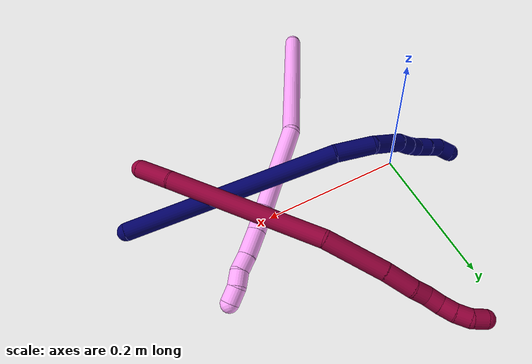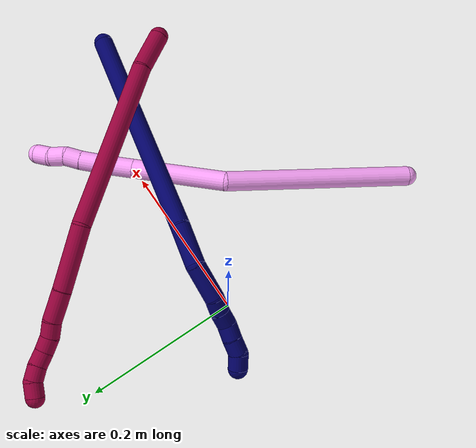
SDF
<sdf version="1.7">
 <world name="default">
  <model name="4">
   <static>0</static>
   <link name="4">
    <collision name="collision-cylinder-e_1_1_4">
     <pose>0.055695 0.020241 0.105749 -0.189122 0.477377 -0.046148</pose>
     <geometry><cylinder><radius>0.0125</radius><length>0.242441</length></cylinder></geometry>
     <surface>
      <friction><ode><mu>1.16</mu><mu2>1.16</mu2><slip1>0</slip1><slip2>0</slip2></ode></friction>
      <contact><ode><kp>1e+06</kp><kd>1</kd><max_vel>0</max_vel><min_depth>0.001</min_depth></ode></contact>
     </surface>
    </collision>
    <visual name="visual-cylinder-e_1_1_4">
     <pose>0.055695 0.020241 0.105749 -0.189122 0.477377 -0.046148</pose>
     <geometry><cylinder><radius>0.0125</radius><length>0.242441</length></cylinder></geometry>
     <material><ambient>1 0.65098 0.996078 1</ambient></material>
    </visual>
    <collision name="collision-cylinder-e_2_4_5">
     <pose>0.118951 0.071445 0.26362 -0.536023 0.124076 -0.034114</pose>
     <geometry><cylinder><radius>0.0125</radius><length>0.122191</length></cylinder></geometry>
     <surface>
      <friction><ode><mu>1.16</mu><mu2>1.16</mu2><slip1>0</slip1><slip2>0</slip2></ode></friction>
      <contact><ode><kp>1e+06</kp><kd>1</kd><max_vel>0</max_vel><min_depth>0.001</min_depth></ode></contact>
     </surface>
    </collision>
    <visual name="visual-cylinder-e_2_4_5">
     <pose>0.118951 0.071445 0.26362 -0.536023 0.124076 -0.034114</pose>
     <geometry><cylinder><radius>0.0125</radius><length>0.122191</length></cylinder></geometry>
     <material><ambient>1 0.65098 0.996078 1</ambient></material>
    </visual>
    <collision name="collision-cylinder-e_3_5_6">
     <pose>0.128809 0.111263 0.3307 -0.534522 0.131413 -0.03603</pose>
     <geometry><cylinder><radius>0.0125</radius><length>0.035066</length></cylinder></geometry>
     <surface>
      <friction><ode><mu>1.16</mu><mu2>1.16</mu2><slip1>0</slip1><slip2>0</slip2></ode></friction>
      <contact><ode><kp>1e+06</kp><kd>1</kd><max_vel>0</max_vel><min_depth>0.001</min_depth></ode></contact>
     </surface>
    </collision>
    <visual name="visual-cylinder-e_3_5_6">
     <pose>0.128809 0.111263 0.3307 -0.534522 0.131413 -0.03603</pose>
     <geometry><cylinder><radius>0.0125</radius><length>0.035066</length></cylinder></geometry>
     <material><ambient>1 0.65098 0.996078 1</ambient></material>
    </visual>
    <collision name="collision-cylinder-e_4_6_7">
     <pose>0.134117 0.129673 0.360891 -0.560229 0.165845 -0.04781</pose>
     <geometry><cylinder><radius>0.0125</radius><length>0.036465</length></cylinder></geometry>
     <surface>
      <friction><ode><mu>1.16</mu><mu2>1.16</mu2><slip1>0</slip1><slip2>0</slip2></ode></friction>
      <contact><ode><kp>1e+06</kp><kd>1</kd><max_vel>0</max_vel><min_depth>0.001</min_depth></ode></contact>
     </surface>
    </collision>
    <visual name="visual-cylinder-e_4_6_7">
     <pose>0.134117 0.129673 0.360891 -0.560229 0.165845 -0.04781</pose>
     <geometry><cylinder><radius>0.0125</radius><length>0.036465</length></cylinder></geometry>
     <material><ambient>1 0.65098 0.996078 1</ambient></material>
    </visual>
    <collision name="collision-cylinder-e_5_7_8">
     <pose>0.139306 0.145544 0.384502 -0.645939 0.204812 -0.068761</pose>
     <geometry><cylinder><radius>0.0125</radius><length>0.021431</length></cylinder></geometry>
     <surface>
      <friction><ode><mu>1.16</mu><mu2>1.16</mu2><slip1>0</slip1><slip2>0</slip2></ode></friction>
      <contact><ode><kp>1e+06</kp><kd>1</kd><max_vel>0</max_vel><min_depth>0.001</min_depth></ode></contact>
     </surface>
    </collision>
    <visual name="visual-cylinder-e_5_7_8">
     <pose>0.139306 0.145544 0.384502 -0.645939 0.204812 -0.068761</pose>
     <geometry><cylinder><radius>0.0125</radius><length>0.021431</length></cylinder></geometry>
     <material><ambient>1 0.65098 0.996078 1</ambient></material>
    </visual>
    <collision name="collision-cylinder-e_6_8_9">
     <pose>0.141807 0.155827 0.402497 -0.391247 0.030944 -0.006132</pose>
     <geometry><cylinder><radius>0.0125</radius><length>0.020817</length></cylinder></geometry>
     <surface>
      <friction><ode><mu>1.16</mu><mu2>1.16</mu2><slip1>0</slip1><slip2>0</slip2></ode></friction>
      <contact><ode><kp>1e+06</kp><kd>1</kd><max_vel>0</max_vel><min_depth>0.001</min_depth></ode></contact>
     </surface>
    </collision>
    <visual name="visual-cylinder-e_6_8_9">
     <pose>0.141807 0.155827 0.402497 -0.391247 0.030944 -0.006132</pose>
     <geometry><cylinder><radius>0.0125</radius><length>0.020817</length></cylinder></geometry>
     <material><ambient>1 0.65098 0.996078 1</ambient></material>
    </visual>
    <collision name="collision-cylinder-e_7_9_2">
     <pose>0.140863 0.166569 0.420423 -0.684115 -0.117548 0.041896</pose>
     <geometry><cylinder><radius>0.0125</radius><length>0.021589</length></cylinder></geometry>
     <surface>
      <friction><ode><mu>1.16</mu><mu2>1.16</mu2><slip1>0</slip1><slip2>0</slip2></ode></friction>
      <contact><ode><kp>1e+06</kp><kd>1</kd><max_vel>0</max_vel><min_depth>0.001</min_depth></ode></contact>
     </surface>
    </collision>
    <visual name="visual-cylinder-e_7_9_2">
     <pose>0.140863 0.166569 0.420423 -0.684115 -0.117548 0.041896</pose>
     <geometry><cylinder><radius>0.0125</radius><length>0.021589</length></cylinder></geometry>
     <material><ambient>1 0.65098 0.996078 1</ambient></material>
    </visual>
    <collision name="collision-sphere-2">
     <pose>0.139598 0.173344 0.42873 0 -0 0</pose>
     <geometry><sphere><radius>0.0125</radius></sphere></geometry>
     <surface>
      <friction><ode><mu>1.16</mu><mu2>1.16</mu2><slip1>0</slip1><slip2>0</slip2></ode></friction>
      <contact><ode><kp>1e+06</kp><kd>1</kd><max_vel>0</max_vel><min_depth>0.001</min_depth></ode></contact>
     </surface>
    </collision>
    <visual name="visual-sphere-2">
     <pose>0.139598 0.173344 0.42873 0 -0 0</pose>
     <geometry><sphere><radius>0.0125</radius></sphere></geometry>
     <material><ambient>1 0.65098 0.996078 1</ambient></material>
    </visual>
    <collision name="collision-sphere-9">
     <pose>0.142129 0.159794 0.412115 0 -0 0</pose>
     <geometry><sphere><radius>0.0125</radius></sphere></geometry>
     <surface>
      <friction><ode><mu>1.16</mu><mu2>1.16</mu2><slip1>0</slip1><slip2>0</slip2></ode></friction>
      <contact><ode><kp>1e+06</kp><kd>1</kd><max_vel>0</max_vel><min_depth>0.001</min_depth></ode></contact>
     </surface>
    </collision>
    <visual name="visual-sphere-9">
     <pose>0.142129 0.159794 0.412115 0 -0 0</pose>
     <geometry><sphere><radius>0.0125</radius></sphere></geometry>
     <material><ambient>1 0.65098 0.996078 1</ambient></material>
    </visual>
    <collision name="collision-sphere-4">
     <pose>0.11139 0.040482 0.211497 0 -0 0</pose>
     <geometry><sphere><radius>0.0125</radius></sphere></geometry>
     <surface>
      <friction><ode><mu>1.16</mu><mu2>1.16</mu2><slip1>0</slip1><slip2>0</slip2></ode></friction>
      <contact><ode><kp>1e+06</kp><kd>1</kd><max_vel>0</max_vel><min_depth>0.001</min_depth></ode></contact>
     </surface>
    </collision>
    <visual name="visual-sphere-4">
     <pose>0.11139 0.040482 0.211497 0 -0 0</pose>
     <geometry><sphere><radius>0.0125</radius></sphere></geometry>
     <material><ambient>1 0.65098 0.996078 1</ambient></material>
    </visual>
    <collision name="collision-sphere-1">
     <geometry><sphere><radius>0.0125</radius></sphere></geometry>
     <surface>
      <friction><ode><mu>1.16</mu><mu2>1.16</mu2><slip1>0</slip1><slip2>0</slip2></ode></friction>
      <contact><ode><kp>1e+06</kp><kd>1</kd><max_vel>0</max_vel><min_depth>0.001</min_depth></ode></contact>
     </surface>
    </collision>
    <visual name="visual-sphere-1">
     <geometry><sphere><radius>0.0125</radius></sphere></geometry>
     <material><ambient>1 0.65098 0.996078 1</ambient></material>
    </visual>
    <collision name="collision-sphere-8">
     <pose>0.141485 0.15186 0.39288 0 -0 0</pose>
     <geometry><sphere><radius>0.0125</radius></sphere></geometry>
     <surface>
      <friction><ode><mu>1.16</mu><mu2>1.16</mu2><slip1>0</slip1><slip2>0</slip2></ode></friction>
      <contact><ode><kp>1e+06</kp><kd>1</kd><max_vel>0</max_vel><min_depth>0.001</min_depth></ode></contact>
     </surface>
    </collision>
    <visual name="visual-sphere-8">
     <pose>0.141485 0.15186 0.39288 0 -0 0</pose>
     <geometry><sphere><radius>0.0125</radius></sphere></geometry>
     <material><ambient>1 0.65098 0.996078 1</ambient></material>
    </visual>
    <collision name="collision-sphere-5">
     <pose>0.126512 0.102408 0.315743 0 -0 0</pose>
     <geometry><sphere><radius>0.0125</radius></sphere></geometry>
     <surface>
      <friction><ode><mu>1.16</mu><mu2>1.16</mu2><slip1>0</slip1><slip2>0</slip2></ode></friction>
      <contact><ode><kp>1e+06</kp><kd>1</kd><max_vel>0</max_vel><min_depth>0.001</min_depth></ode></contact>
     </surface>
    </collision>
    <visual name="visual-sphere-5">
     <pose>0.126512 0.102408 0.315743 0 -0 0</pose>
     <geometry><sphere><radius>0.0125</radius></sphere></geometry>
     <material><ambient>1 0.65098 0.996078 1</ambient></material>
    </visual>
    <collision name="collision-sphere-6">
     <pose>0.131107 0.120118 0.345657 0 -0 0</pose>
     <geometry><sphere><radius>0.0125</radius></sphere></geometry>
     <surface>
      <friction><ode><mu>1.16</mu><mu2>1.16</mu2><slip1>0</slip1><slip2>0</slip2></ode></friction>
      <contact><ode><kp>1e+06</kp><kd>1</kd><max_vel>0</max_vel><min_depth>0.001</min_depth></ode></contact>
     </surface>
    </collision>
    <visual name="visual-sphere-6">
     <pose>0.131107 0.120118 0.345657 0 -0 0</pose>
     <geometry><sphere><radius>0.0125</radius></sphere></geometry>
     <material><ambient>1 0.65098 0.996078 1</ambient></material>
    </visual>
    <collision name="collision-sphere-7">
     <pose>0.137127 0.139229 0.376124 0 -0 0</pose>
     <geometry><sphere><radius>0.0125</radius></sphere></geometry>
     <surface>
      <friction><ode><mu>1.16</mu><mu2>1.16</mu2><slip1>0</slip1><slip2>0</slip2></ode></friction>
      <contact><ode><kp>1e+06</kp><kd>1</kd><max_vel>0</max_vel><min_depth>0.001</min_depth></ode></contact>
     </surface>
    </collision>
    <visual name="visual-sphere-7">
     <pose>0.137127 0.139229 0.376124 0 -0 0</pose>
     <geometry><sphere><radius>0.0125</radius></sphere></geometry>
     <material><ambient>1 0.65098 0.996078 1</ambient></material>
    </visual>
    <inertial>
     <pose>0.092847 0.064453 0.216603 0 -0 0</pose>
     <mass>0.5</mass>
     <inertia>
      <ixx>0.001189</ixx>
      <ixy>0</ixy>
      <ixz>0</ixz>
      <iyy>0.001286</iyy>
      <iyz>0</iyz>
      <izz>-0.000825</izz>
     </inertia>
    </inertial>
   </link>
   <pose>0.009807 -0.288502 0.011711 -2.42669 -1.26145 0.59895</pose>
  </model>
  <model name="7">
   <static>0</static>
   <link name="7">
    <collision name="collision-cylinder-e_1_1_4">
     <pose>-0.061326 -0.00943 0.135751 0.069357 -0.42341 -0.014912</pose>
     <geometry><cylinder><radius>0.0125</radius><length>0.298518</length></cylinder></geometry>
     <surface>
      <friction><ode><mu>1.16</mu><mu2>1.16</mu2><slip1>0</slip1><slip2>0</slip2></ode></friction>
      <contact><ode><kp>1e+06</kp><kd>1</kd><max_vel>0</max_vel><min_depth>0.001</min_depth></ode></contact>
     </surface>
    </collision>
    <visual name="visual-cylinder-e_1_1_4">
     <pose>-0.061326 -0.00943 0.135751 0.069357 -0.42341 -0.014912</pose>
     <geometry><cylinder><radius>0.0125</radius><length>0.298518</length></cylinder></geometry>
     <material><ambient>0.003922 0 0.403922 1</ambient></material>
    </visual>
    <collision name="collision-cylinder-e_2_4_5">
     <pose>-0.127987 -0.019833 0.297711 0.037057 -0.200662 -0.003731</pose>
     <geometry><cylinder><radius>0.0125</radius><length>0.053527</length></cylinder></geometry>
     <surface>
      <friction><ode><mu>1.16</mu><mu2>1.16</mu2><slip1>0</slip1><slip2>0</slip2></ode></friction>
      <contact><ode><kp>1e+06</kp><kd>1</kd><max_vel>0</max_vel><min_depth>0.001</min_depth></ode></contact>
     </surface>
    </collision>
    <visual name="visual-cylinder-e_2_4_5">
     <pose>-0.127987 -0.019833 0.297711 0.037057 -0.200662 -0.003731</pose>
     <geometry><cylinder><radius>0.0125</radius><length>0.053527</length></cylinder></geometry>
     <material><ambient>0.003922 0 0.403922 1</ambient></material>
    </visual>
    <collision name="collision-cylinder-e_3_5_6">
     <pose>-0.128882 -0.015949 0.346675 -0.210209 0.188541 -0.019948</pose>
     <geometry><cylinder><radius>0.0125</radius><length>0.047376</length></cylinder></geometry>
     <surface>
      <friction><ode><mu>1.16</mu><mu2>1.16</mu2><slip1>0</slip1><slip2>0</slip2></ode></friction>
      <contact><ode><kp>1e+06</kp><kd>1</kd><max_vel>0</max_vel><min_depth>0.001</min_depth></ode></contact>
     </surface>
    </collision>
    <visual name="visual-cylinder-e_3_5_6">
     <pose>-0.128882 -0.015949 0.346675 -0.210209 0.188541 -0.019948</pose>
     <geometry><cylinder><radius>0.0125</radius><length>0.047376</length></cylinder></geometry>
     <material><ambient>0.003922 0 0.403922 1</ambient></material>
    </visual>
    <collision name="collision-cylinder-e_4_6_7">
     <pose>-0.119747 -0.009941 0.378411 -0.127688 0.47833 -0.031174</pose>
     <geometry><cylinder><radius>0.0125</radius><length>0.020398</length></cylinder></geometry>
     <surface>
      <friction><ode><mu>1.16</mu><mu2>1.16</mu2><slip1>0</slip1><slip2>0</slip2></ode></friction>
      <contact><ode><kp>1e+06</kp><kd>1</kd><max_vel>0</max_vel><min_depth>0.001</min_depth></ode></contact>
     </surface>
    </collision>
    <visual name="visual-cylinder-e_4_6_7">
     <pose>-0.119747 -0.009941 0.378411 -0.127688 0.47833 -0.031174</pose>
     <geometry><cylinder><radius>0.0125</radius><length>0.020398</length></cylinder></geometry>
     <material><ambient>0.003922 0 0.403922 1</ambient></material>
    </visual>
    <collision name="collision-cylinder-e_5_7_8">
     <pose>-0.110849 -0.006434 0.396212 -0.260777 0.431555 -0.05747</pose>
     <geometry><cylinder><radius>0.0125</radius><length>0.0201</length></cylinder></geometry>
     <surface>
      <friction><ode><mu>1.16</mu><mu2>1.16</mu2><slip1>0</slip1><slip2>0</slip2></ode></friction>
      <contact><ode><kp>1e+06</kp><kd>1</kd><max_vel>0</max_vel><min_depth>0.001</min_depth></ode></contact>
     </surface>
    </collision>
    <visual name="visual-cylinder-e_5_7_8">
     <pose>-0.110849 -0.006434 0.396212 -0.260777 0.431555 -0.05747</pose>
     <geometry><cylinder><radius>0.0125</radius><length>0.0201</length></cylinder></geometry>
     <material><ambient>0.003922 0 0.403922 1</ambient></material>
    </visual>
    <collision name="collision-cylinder-e_6_8_9">
     <pose>-0.105314 -0.003871 0.414966 -0.021049 0.133174 -0.001404</pose>
     <geometry><cylinder><radius>0.0125</radius><length>0.020051</length></cylinder></geometry>
     <surface>
      <friction><ode><mu>1.16</mu><mu2>1.16</mu2><slip1>0</slip1><slip2>0</slip2></ode></friction>
      <contact><ode><kp>1e+06</kp><kd>1</kd><max_vel>0</max_vel><min_depth>0.001</min_depth></ode></contact>
     </surface>
    </collision>
    <visual name="visual-cylinder-e_6_8_9">
     <pose>-0.105314 -0.003871 0.414966 -0.021049 0.133174 -0.001404</pose>
     <geometry><cylinder><radius>0.0125</radius><length>0.020051</length></cylinder></geometry>
     <material><ambient>0.003922 0 0.403922 1</ambient></material>
    </visual>
    <collision name="collision-cylinder-e_7_9_10">
     <pose>-0.101832 -0.002661 0.434616 -0.102684 0.216727 -0.011181</pose>
     <geometry><cylinder><radius>0.0125</radius><length>0.020002</length></cylinder></geometry>
     <surface>
      <friction><ode><mu>1.16</mu><mu2>1.16</mu2><slip1>0</slip1><slip2>0</slip2></ode></friction>
      <contact><ode><kp>1e+06</kp><kd>1</kd><max_vel>0</max_vel><min_depth>0.001</min_depth></ode></contact>
     </surface>
    </collision>
    <visual name="visual-cylinder-e_7_9_10">
     <pose>-0.101832 -0.002661 0.434616 -0.102684 0.216727 -0.011181</pose>
     <geometry><cylinder><radius>0.0125</radius><length>0.020002</length></cylinder></geometry>
     <material><ambient>0.003922 0 0.403922 1</ambient></material>
    </visual>
    <collision name="collision-cylinder-e_8_10_2">
     <pose>-0.096027 -0.004649 0.453163 0.326273 0.373562 0.062193</pose>
     <geometry><cylinder><radius>0.0125</radius><length>0.02003</length></cylinder></geometry>
     <surface>
      <friction><ode><mu>1.16</mu><mu2>1.16</mu2><slip1>0</slip1><slip2>0</slip2></ode></friction>
      <contact><ode><kp>1e+06</kp><kd>1</kd><max_vel>0</max_vel><min_depth>0.001</min_depth></ode></contact>
     </surface>
    </collision>
    <visual name="visual-cylinder-e_8_10_2">
     <pose>-0.096027 -0.004649 0.453163 0.326273 0.373562 0.062193</pose>
     <geometry><cylinder><radius>0.0125</radius><length>0.02003</length></cylinder></geometry>
     <material><ambient>0.003922 0 0.403922 1</ambient></material>
    </visual>
    <collision name="collision-sphere-2">
     <pose>-0.092372 -0.007637 0.461996 0 -0 0</pose>
     <geometry><sphere><radius>0.0125</radius></sphere></geometry>
     <surface>
      <friction><ode><mu>1.16</mu><mu2>1.16</mu2><slip1>0</slip1><slip2>0</slip2></ode></friction>
      <contact><ode><kp>1e+06</kp><kd>1</kd><max_vel>0</max_vel><min_depth>0.001</min_depth></ode></contact>
     </surface>
    </collision>
    <visual name="visual-sphere-2">
     <pose>-0.092372 -0.007637 0.461996 0 -0 0</pose>
     <geometry><sphere><radius>0.0125</radius></sphere></geometry>
     <material><ambient>0.003922 0 0.403922 1</ambient></material>
    </visual>
    <collision name="collision-sphere-10">
     <pose>-0.099682 -0.00166 0.444331 0 -0 0</pose>
     <geometry><sphere><radius>0.0125</radius></sphere></geometry>
     <surface>
      <friction><ode><mu>1.16</mu><mu2>1.16</mu2><slip1>0</slip1><slip2>0</slip2></ode></friction>
      <contact><ode><kp>1e+06</kp><kd>1</kd><max_vel>0</max_vel><min_depth>0.001</min_depth></ode></contact>
     </surface>
    </collision>
    <visual name="visual-sphere-10">
     <pose>-0.099682 -0.00166 0.444331 0 -0 0</pose>
     <geometry><sphere><radius>0.0125</radius></sphere></geometry>
     <material><ambient>0.003922 0 0.403922 1</ambient></material>
    </visual>
    <collision name="collision-sphere-9">
     <pose>-0.103983 -0.003662 0.4249 0 -0 0</pose>
     <geometry><sphere><radius>0.0125</radius></sphere></geometry>
     <surface>
      <friction><ode><mu>1.16</mu><mu2>1.16</mu2><slip1>0</slip1><slip2>0</slip2></ode></friction>
      <contact><ode><kp>1e+06</kp><kd>1</kd><max_vel>0</max_vel><min_depth>0.001</min_depth></ode></contact>
     </surface>
    </collision>
    <visual name="visual-sphere-9">
     <pose>-0.103983 -0.003662 0.4249 0 -0 0</pose>
     <geometry><sphere><radius>0.0125</radius></sphere></geometry>
     <material><ambient>0.003922 0 0.403922 1</ambient></material>
    </visual>
    <collision name="collision-sphere-4">
     <pose>-0.122653 -0.018861 0.271502 0 -0 0</pose>
     <geometry><sphere><radius>0.0125</radius></sphere></geometry>
     <surface>
      <friction><ode><mu>1.16</mu><mu2>1.16</mu2><slip1>0</slip1><slip2>0</slip2></ode></friction>
      <contact><ode><kp>1e+06</kp><kd>1</kd><max_vel>0</max_vel><min_depth>0.001</min_depth></ode></contact>
     </surface>
    </collision>
    <visual name="visual-sphere-4">
     <pose>-0.122653 -0.018861 0.271502 0 -0 0</pose>
     <geometry><sphere><radius>0.0125</radius></sphere></geometry>
     <material><ambient>0.003922 0 0.403922 1</ambient></material>
    </visual>
    <collision name="collision-sphere-1">
     <geometry><sphere><radius>0.0125</radius></sphere></geometry>
     <surface>
      <friction><ode><mu>1.16</mu><mu2>1.16</mu2><slip1>0</slip1><slip2>0</slip2></ode></friction>
      <contact><ode><kp>1e+06</kp><kd>1</kd><max_vel>0</max_vel><min_depth>0.001</min_depth></ode></contact>
     </surface>
    </collision>
    <visual name="visual-sphere-1">
     <geometry><sphere><radius>0.0125</radius></sphere></geometry>
     <material><ambient>0.003922 0 0.403922 1</ambient></material>
    </visual>
    <collision name="collision-sphere-8">
     <pose>-0.106645 -0.004081 0.405032 0 -0 0</pose>
     <geometry><sphere><radius>0.0125</radius></sphere></geometry>
     <surface>
      <friction><ode><mu>1.16</mu><mu2>1.16</mu2><slip1>0</slip1><slip2>0</slip2></ode></friction>
      <contact><ode><kp>1e+06</kp><kd>1</kd><max_vel>0</max_vel><min_depth>0.001</min_depth></ode></contact>
     </surface>
    </collision>
    <visual name="visual-sphere-8">
     <pose>-0.106645 -0.004081 0.405032 0 -0 0</pose>
     <geometry><sphere><radius>0.0125</radius></sphere></geometry>
     <material><ambient>0.003922 0 0.403922 1</ambient></material>
    </visual>
    <collision name="collision-sphere-5">
     <pose>-0.133321 -0.020804 0.323919 0 -0 0</pose>
     <geometry><sphere><radius>0.0125</radius></sphere></geometry>
     <surface>
      <friction><ode><mu>1.16</mu><mu2>1.16</mu2><slip1>0</slip1><slip2>0</slip2></ode></friction>
      <contact><ode><kp>1e+06</kp><kd>1</kd><max_vel>0</max_vel><min_depth>0.001</min_depth></ode></contact>
     </surface>
    </collision>
    <visual name="visual-sphere-5">
     <pose>-0.133321 -0.020804 0.323919 0 -0 0</pose>
     <geometry><sphere><radius>0.0125</radius></sphere></geometry>
     <material><ambient>0.003922 0 0.403922 1</ambient></material>
    </visual>
    <collision name="collision-sphere-6">
     <pose>-0.124442 -0.011094 0.369431 0 -0 0</pose>
     <geometry><sphere><radius>0.0125</radius></sphere></geometry>
     <surface>
      <friction><ode><mu>1.16</mu><mu2>1.16</mu2><slip1>0</slip1><slip2>0</slip2></ode></friction>
      <contact><ode><kp>1e+06</kp><kd>1</kd><max_vel>0</max_vel><min_depth>0.001</min_depth></ode></contact>
     </surface>
    </collision>
    <visual name="visual-sphere-6">
     <pose>-0.124442 -0.011094 0.369431 0 -0 0</pose>
     <geometry><sphere><radius>0.0125</radius></sphere></geometry>
     <material><ambient>0.003922 0 0.403922 1</ambient></material>
    </visual>
    <collision name="collision-sphere-7">
     <pose>-0.115053 -0.008788 0.387392 0 -0 0</pose>
     <geometry><sphere><radius>0.0125</radius></sphere></geometry>
     <surface>
      <friction><ode><mu>1.16</mu><mu2>1.16</mu2><slip1>0</slip1><slip2>0</slip2></ode></friction>
      <contact><ode><kp>1e+06</kp><kd>1</kd><max_vel>0</max_vel><min_depth>0.001</min_depth></ode></contact>
     </surface>
    </collision>
    <visual name="visual-sphere-7">
     <pose>-0.115053 -0.008788 0.387392 0 -0 0</pose>
     <geometry><sphere><radius>0.0125</radius></sphere></geometry>
     <material><ambient>0.003922 0 0.403922 1</ambient></material>
    </visual>
    <inertial>
     <pose>-0.084012 -0.010377 0.229313 0 -0 0</pose>
     <mass>0.5</mass>
     <inertia>
      <ixx>0.002026</ixx>
      <ixy>0</ixy>
      <ixz>0</ixz>
      <iyy>0.002225</iyy>
      <iyz>0</iyz>
      <izz>0.001089</izz>
     </inertia>
    </inertial>
   </link>
   <pose>0.384279 -0.059833 0.022205 -2.46095 1.3138 0.474102</pose>
  </model>
  <model name="8">
   <static>0</static>
   <link name="8">
    <collision name="collision-cylinder-e_1_1_4">
     <pose>-0.012987 0.018705 0.012753 -0.972387 -0.520843 0.279826</pose>
     <geometry><cylinder><radius>0.0125</radius><length>0.052199</length></cylinder></geometry>
     <surface>
      <friction><ode><mu>1.16</mu><mu2>1.16</mu2><slip1>0</slip1><slip2>0</slip2></ode></friction>
      <contact><ode><kp>1e+06</kp><kd>1</kd><max_vel>0</max_vel><min_depth>0.001</min_depth></ode></contact>
     </surface>
    </collision>
    <visual name="visual-cylinder-e_1_1_4">
     <pose>-0.012987 0.018705 0.012753 -0.972387 -0.520843 0.279826</pose>
     <geometry><cylinder><radius>0.0125</radius><length>0.052199</length></cylinder></geometry>
     <material><ambient>0.584314 0 0.227451 1</ambient></material>
    </visual>
    <collision name="collision-cylinder-e_2_4_5">
     <pose>-0.073913 0.129591 0.064157 -1.17378 -0.44719 0.300189</pose>
     <geometry><cylinder><radius>0.0125</radius><length>0.221715</length></cylinder></geometry>
     <surface>
      <friction><ode><mu>1.16</mu><mu2>1.16</mu2><slip1>0</slip1><slip2>0</slip2></ode></friction>
      <contact><ode><kp>1e+06</kp><kd>1</kd><max_vel>0</max_vel><min_depth>0.001</min_depth></ode></contact>
     </surface>
    </collision>
    <visual name="visual-cylinder-e_2_4_5">
     <pose>-0.073913 0.129591 0.064157 -1.17378 -0.44719 0.300189</pose>
     <geometry><cylinder><radius>0.0125</radius><length>0.221715</length></cylinder></geometry>
     <material><ambient>0.584314 0 0.227451 1</ambient></material>
    </visual>
    <collision name="collision-cylinder-e_3_5_6">
     <pose>-0.130968 0.262584 0.110697 -1.37983 -0.215885 0.178367</pose>
     <geometry><cylinder><radius>0.0125</radius><length>0.08511</length></cylinder></geometry>
     <surface>
      <friction><ode><mu>1.16</mu><mu2>1.16</mu2><slip1>0</slip1><slip2>0</slip2></ode></friction>
      <contact><ode><kp>1e+06</kp><kd>1</kd><max_vel>0</max_vel><min_depth>0.001</min_depth></ode></contact>
     </surface>
    </collision>
    <visual name="visual-cylinder-e_3_5_6">
     <pose>-0.130968 0.262584 0.110697 -1.37983 -0.215885 0.178367</pose>
     <geometry><cylinder><radius>0.0125</radius><length>0.08511</length></cylinder></geometry>
     <material><ambient>0.584314 0 0.227451 1</ambient></material>
    </visual>
    <collision name="collision-cylinder-e_4_6_7">
     <pose>-0.142825 0.322994 0.122285 -1.38426 -0.136612 0.113296</pose>
     <geometry><cylinder><radius>0.0125</radius><length>0.040263</length></cylinder></geometry>
     <surface>
      <friction><ode><mu>1.16</mu><mu2>1.16</mu2><slip1>0</slip1><slip2>0</slip2></ode></friction>
      <contact><ode><kp>1e+06</kp><kd>1</kd><max_vel>0</max_vel><min_depth>0.001</min_depth></ode></contact>
     </surface>
    </collision>
    <visual name="visual-cylinder-e_4_6_7">
     <pose>-0.142825 0.322994 0.122285 -1.38426 -0.136612 0.113296</pose>
     <geometry><cylinder><radius>0.0125</radius><length>0.040263</length></cylinder></geometry>
     <material><ambient>0.584314 0 0.227451 1</ambient></material>
    </visual>
    <collision name="collision-cylinder-e_5_7_8">
     <pose>-0.146918 0.35276 0.125902 -1.57887 -0.1321 0.133168</pose>
     <geometry><cylinder><radius>0.0125</radius><length>0.020516</length></cylinder></geometry>
     <surface>
      <friction><ode><mu>1.16</mu><mu2>1.16</mu2><slip1>0</slip1><slip2>0</slip2></ode></friction>
      <contact><ode><kp>1e+06</kp><kd>1</kd><max_vel>0</max_vel><min_depth>0.001</min_depth></ode></contact>
     </surface>
    </collision>
    <visual name="visual-cylinder-e_5_7_8">
     <pose>-0.146918 0.35276 0.125902 -1.57887 -0.1321 0.133168</pose>
     <geometry><cylinder><radius>0.0125</radius><length>0.020516</length></cylinder></geometry>
     <material><ambient>0.584314 0 0.227451 1</ambient></material>
    </visual>
    <collision name="collision-cylinder-e_6_8_9">
     <pose>-0.149623 0.372571 0.128308 -1.31824 -0.135136 0.104753</pose>
     <geometry><cylinder><radius>0.0125</radius><length>0.020101</length></cylinder></geometry>
     <surface>
      <friction><ode><mu>1.16</mu><mu2>1.16</mu2><slip1>0</slip1><slip2>0</slip2></ode></friction>
      <contact><ode><kp>1e+06</kp><kd>1</kd><max_vel>0</max_vel><min_depth>0.001</min_depth></ode></contact>
     </surface>
    </collision>
    <visual name="visual-cylinder-e_6_8_9">
     <pose>-0.149623 0.372571 0.128308 -1.31824 -0.135136 0.104753</pose>
     <geometry><cylinder><radius>0.0125</radius><length>0.020101</length></cylinder></geometry>
     <material><ambient>0.584314 0 0.227451 1</ambient></material>
    </visual>
    <collision name="collision-cylinder-e_7_9_10">
     <pose>-0.153856 0.391084 0.134515 -1.17389 -0.29089 0.194247</pose>
     <geometry><cylinder><radius>0.0125</radius><length>0.020079</length></cylinder></geometry>
     <surface>
      <friction><ode><mu>1.16</mu><mu2>1.16</mu2><slip1>0</slip1><slip2>0</slip2></ode></friction>
      <contact><ode><kp>1e+06</kp><kd>1</kd><max_vel>0</max_vel><min_depth>0.001</min_depth></ode></contact>
     </surface>
    </collision>
    <visual name="visual-cylinder-e_7_9_10">
     <pose>-0.153856 0.391084 0.134515 -1.17389 -0.29089 0.194247</pose>
     <geometry><cylinder><radius>0.0125</radius><length>0.020079</length></cylinder></geometry>
     <material><ambient>0.584314 0 0.227451 1</ambient></material>
    </visual>
    <collision name="collision-cylinder-e_8_10_11">
     <pose>-0.16087 0.408735 0.140648 -1.30236 -0.426125 0.3268</pose>
     <geometry><cylinder><radius>0.0125</radius><length>0.020003</length></cylinder></geometry>
     <surface>
      <friction><ode><mu>1.16</mu><mu2>1.16</mu2><slip1>0</slip1><slip2>0</slip2></ode></friction>
      <contact><ode><kp>1e+06</kp><kd>1</kd><max_vel>0</max_vel><min_depth>0.001</min_depth></ode></contact>
     </surface>
    </collision>
    <visual name="visual-cylinder-e_8_10_11">
     <pose>-0.16087 0.408735 0.140648 -1.30236 -0.426125 0.3268</pose>
     <geometry><cylinder><radius>0.0125</radius><length>0.020003</length></cylinder></geometry>
     <material><ambient>0.584314 0 0.227451 1</ambient></material>
    </visual>
    <collision name="collision-cylinder-e_9_11_2">
     <pose>-0.169608 0.426245 0.141406 -1.75846 -0.478086 0.572503</pose>
     <geometry><cylinder><radius>0.0125</radius><length>0.020014</length></cylinder></geometry>
     <surface>
      <friction><ode><mu>1.16</mu><mu2>1.16</mu2><slip1>0</slip1><slip2>0</slip2></ode></friction>
      <contact><ode><kp>1e+06</kp><kd>1</kd><max_vel>0</max_vel><min_depth>0.001</min_depth></ode></contact>
     </surface>
    </collision>
    <visual name="visual-cylinder-e_9_11_2">
     <pose>-0.169608 0.426245 0.141406 -1.75846 -0.478086 0.572503</pose>
     <geometry><cylinder><radius>0.0125</radius><length>0.020014</length></cylinder></geometry>
     <material><ambient>0.584314 0 0.227451 1</ambient></material>
    </visual>
    <collision name="collision-sphere-2">
     <pose>-0.174212 0.434974 0.139748 0 -0 0</pose>
     <geometry><sphere><radius>0.0125</radius></sphere></geometry>
     <surface>
      <friction><ode><mu>1.16</mu><mu2>1.16</mu2><slip1>0</slip1><slip2>0</slip2></ode></friction>
      <contact><ode><kp>1e+06</kp><kd>1</kd><max_vel>0</max_vel><min_depth>0.001</min_depth></ode></contact>
     </surface>
    </collision>
    <visual name="visual-sphere-2">
     <pose>-0.174212 0.434974 0.139748 0 -0 0</pose>
     <geometry><sphere><radius>0.0125</radius></sphere></geometry>
     <material><ambient>0.584314 0 0.227451 1</ambient></material>
    </visual>
    <collision name="collision-sphere-11">
     <pose>-0.165004 0.417516 0.143063 0 -0 0</pose>
     <geometry><sphere><radius>0.0125</radius></sphere></geometry>
     <surface>
      <friction><ode><mu>1.16</mu><mu2>1.16</mu2><slip1>0</slip1><slip2>0</slip2></ode></friction>
      <contact><ode><kp>1e+06</kp><kd>1</kd><max_vel>0</max_vel><min_depth>0.001</min_depth></ode></contact>
     </surface>
    </collision>
    <visual name="visual-sphere-11">
     <pose>-0.165004 0.417516 0.143063 0 -0 0</pose>
     <geometry><sphere><radius>0.0125</radius></sphere></geometry>
     <material><ambient>0.584314 0 0.227451 1</ambient></material>
    </visual>
    <collision name="collision-sphere-10">
     <pose>-0.156736 0.399954 0.138233 0 -0 0</pose>
     <geometry><sphere><radius>0.0125</radius></sphere></geometry>
     <surface>
      <friction><ode><mu>1.16</mu><mu2>1.16</mu2><slip1>0</slip1><slip2>0</slip2></ode></friction>
      <contact><ode><kp>1e+06</kp><kd>1</kd><max_vel>0</max_vel><min_depth>0.001</min_depth></ode></contact>
     </surface>
    </collision>
    <visual name="visual-sphere-10">
     <pose>-0.156736 0.399954 0.138233 0 -0 0</pose>
     <geometry><sphere><radius>0.0125</radius></sphere></geometry>
     <material><ambient>0.584314 0 0.227451 1</ambient></material>
    </visual>
    <collision name="collision-sphere-9">
     <pose>-0.150977 0.382214 0.130797 0 -0 0</pose>
     <geometry><sphere><radius>0.0125</radius></sphere></geometry>
     <surface>
      <friction><ode><mu>1.16</mu><mu2>1.16</mu2><slip1>0</slip1><slip2>0</slip2></ode></friction>
      <contact><ode><kp>1e+06</kp><kd>1</kd><max_vel>0</max_vel><min_depth>0.001</min_depth></ode></contact>
     </surface>
    </collision>
    <visual name="visual-sphere-9">
     <pose>-0.150977 0.382214 0.130797 0 -0 0</pose>
     <geometry><sphere><radius>0.0125</radius></sphere></geometry>
     <material><ambient>0.584314 0 0.227451 1</ambient></material>
    </visual>
    <collision name="collision-sphere-4">
     <pose>-0.025975 0.03741 0.025506 0 -0 0</pose>
     <geometry><sphere><radius>0.0125</radius></sphere></geometry>
     <surface>
      <friction><ode><mu>1.16</mu><mu2>1.16</mu2><slip1>0</slip1><slip2>0</slip2></ode></friction>
      <contact><ode><kp>1e+06</kp><kd>1</kd><max_vel>0</max_vel><min_depth>0.001</min_depth></ode></contact>
     </surface>
    </collision>
    <visual name="visual-sphere-4">
     <pose>-0.025975 0.03741 0.025506 0 -0 0</pose>
     <geometry><sphere><radius>0.0125</radius></sphere></geometry>
     <material><ambient>0.584314 0 0.227451 1</ambient></material>
    </visual>
    <collision name="collision-sphere-1">
     <geometry><sphere><radius>0.0125</radius></sphere></geometry>
     <surface>
      <friction><ode><mu>1.16</mu><mu2>1.16</mu2><slip1>0</slip1><slip2>0</slip2></ode></friction>
      <contact><ode><kp>1e+06</kp><kd>1</kd><max_vel>0</max_vel><min_depth>0.001</min_depth></ode></contact>
     </surface>
    </collision>
    <visual name="visual-sphere-1">
     <geometry><sphere><radius>0.0125</radius></sphere></geometry>
     <material><ambient>0.584314 0 0.227451 1</ambient></material>
    </visual>
    <collision name="collision-sphere-8">
     <pose>-0.148269 0.362929 0.12582 0 -0 0</pose>
     <geometry><sphere><radius>0.0125</radius></sphere></geometry>
     <surface>
      <friction><ode><mu>1.16</mu><mu2>1.16</mu2><slip1>0</slip1><slip2>0</slip2></ode></friction>
      <contact><ode><kp>1e+06</kp><kd>1</kd><max_vel>0</max_vel><min_depth>0.001</min_depth></ode></contact>
     </surface>
    </collision>
    <visual name="visual-sphere-8">
     <pose>-0.148269 0.362929 0.12582 0 -0 0</pose>
     <geometry><sphere><radius>0.0125</radius></sphere></geometry>
     <material><ambient>0.584314 0 0.227451 1</ambient></material>
    </visual>
    <collision name="collision-sphere-5">
     <pose>-0.121852 0.221773 0.102807 0 -0 0</pose>
     <geometry><sphere><radius>0.0125</radius></sphere></geometry>
     <surface>
      <friction><ode><mu>1.16</mu><mu2>1.16</mu2><slip1>0</slip1><slip2>0</slip2></ode></friction>
      <contact><ode><kp>1e+06</kp><kd>1</kd><max_vel>0</max_vel><min_depth>0.001</min_depth></ode></contact>
     </surface>
    </collision>
    <visual name="visual-sphere-5">
     <pose>-0.121852 0.221773 0.102807 0 -0 0</pose>
     <geometry><sphere><radius>0.0125</radius></sphere></geometry>
     <material><ambient>0.584314 0 0.227451 1</ambient></material>
    </visual>
    <collision name="collision-sphere-6">
     <pose>-0.140083 0.303395 0.118587 0 -0 0</pose>
     <geometry><sphere><radius>0.0125</radius></sphere></geometry>
     <surface>
      <friction><ode><mu>1.16</mu><mu2>1.16</mu2><slip1>0</slip1><slip2>0</slip2></ode></friction>
      <contact><ode><kp>1e+06</kp><kd>1</kd><max_vel>0</max_vel><min_depth>0.001</min_depth></ode></contact>
     </surface>
    </collision>
    <visual name="visual-sphere-6">
     <pose>-0.140083 0.303395 0.118587 0 -0 0</pose>
     <geometry><sphere><radius>0.0125</radius></sphere></geometry>
     <material><ambient>0.584314 0 0.227451 1</ambient></material>
    </visual>
    <collision name="collision-sphere-7">
     <pose>-0.145567 0.342592 0.125984 0 -0 0</pose>
     <geometry><sphere><radius>0.0125</radius></sphere></geometry>
     <surface>
      <friction><ode><mu>1.16</mu><mu2>1.16</mu2><slip1>0</slip1><slip2>0</slip2></ode></friction>
      <contact><ode><kp>1e+06</kp><kd>1</kd><max_vel>0</max_vel><min_depth>0.001</min_depth></ode></contact>
     </surface>
    </collision>
    <visual name="visual-sphere-7">
     <pose>-0.145567 0.342592 0.125984 0 -0 0</pose>
     <geometry><sphere><radius>0.0125</radius></sphere></geometry>
     <material><ambient>0.584314 0 0.227451 1</ambient></material>
    </visual>
    <inertial>
     <pose>-0.099373 0.208695 0.085483 0 -0 0</pose>
     <mass>0.5</mass>
     <inertia>
      <ixx>0.001114</ixx>
      <ixy>0</ixy>
      <ixz>0</ixz>
      <iyy>0.000765</iyy>
      <iyz>0</iyz>
      <izz>-0.000409</izz>
     </inertia>
    </inertial>
   </link>
   <pose>0.334868 -0.117573 0.063 -0.887013 0.793141 0.001054</pose>
  </model>
 </world>
</sdf>
